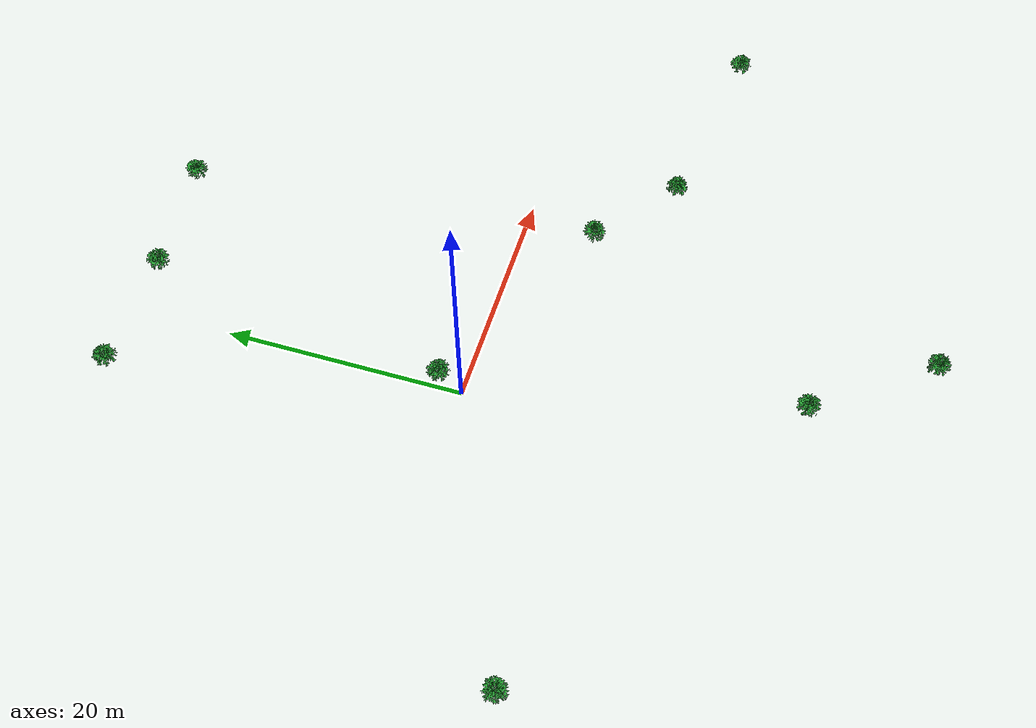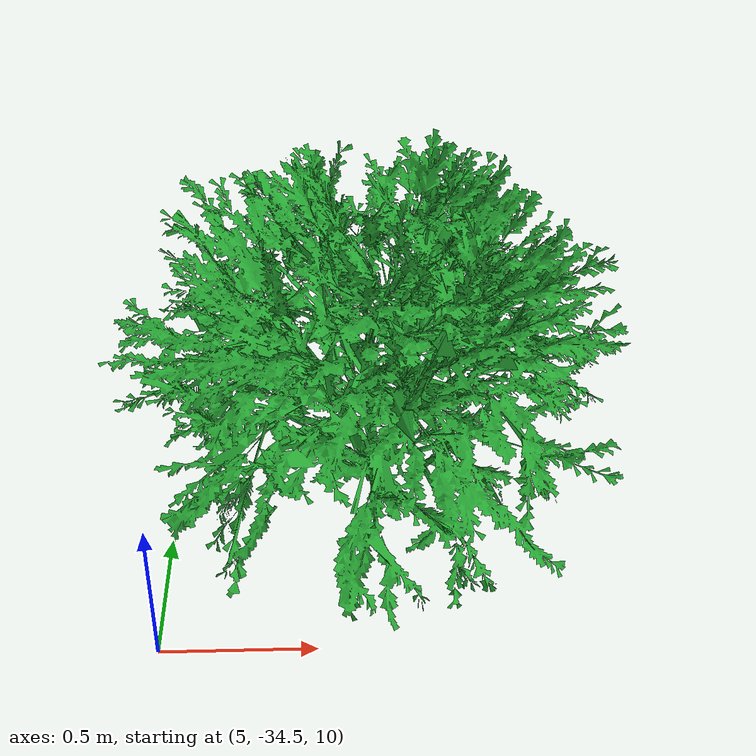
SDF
<sdf version="1.6">
 <world name="kin">
  <include><uri>model://sun</uri><pose>0 0 100 0 0 0</pose></include>
  <include>
   <uri>model://tree1</uri>
   <name>tree1_0</name>
   <pose>-1.54947463662 22.9281659238 10 0 0 4.27120201325</pose>
  </include>
  <include>
   <uri>model://tree1</uri>
   <name>tree1_1</name>
   <pose>10.4908049736 -7.53207471609 10 0 0 0.774660105044</pose>
  </include>
  <include>
   <uri>model://tree1</uri>
   <name>tree1_2</name>
   <pose>-0.288133870841 -25.6376380745 10 0 0 3.33748398993</pose>
  </include>
  <include>
   <uri>model://tree1</uri>
   <name>tree1_3</name>
   <pose>31.7101761373 -14.6777765838 10 0 0 4.30312884022</pose>
  </include>
  <include>
   <uri>model://tree1</uri>
   <name>tree1_4</name>
   <pose>7.54133145624 24.1107064554 10 0 0 2.10261427572</pose>
  </include>
  <include>
   <uri>model://tree1</uri>
   <name>tree1_5</name>
   <pose>16.7150792807 -12.5760301581 10 0 0 2.56474647022</pose>
  </include>
  <include>
   <uri>model://tree1</uri>
   <name>tree1_6</name>
   <pose>5.69644328331 -33.8543156691 10 0 0 5.23163773391</pose>
  </include>
  <include>
   <uri>model://tree1</uri>
   <name>tree1_7</name>
   <pose>-4.91037616847 -0.316355991446 10 0 0 4.4640348111</pose>
  </include>
  <include>
   <uri>model://tree1</uri>
   <name>tree1_8</name>
   <pose>-10.5571252468 22.6731629624 10 0 0 2.39426569163</pose>
  </include>
  <include>
   <uri>model://tree1</uri>
   <name>tree1_9</name>
   <pose>-25.5079989475 -10.9374816162 10 0 0 1.28696215041</pose>
  </include>
  <scene><sky><clouds><speed>1</speed></clouds></sky><grid>0</grid></scene>
  <gravity>0 0 0</gravity>
  <physics name="default_physics" default="0" type="ode">
   <max_step_size>0.01</max_step_size>
   <real_time_factor>1</real_time_factor>
   <real_time_update_rate>100</real_time_update_rate>
  </physics>
 </world>
</sdf>

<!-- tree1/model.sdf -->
<sdf version="1.5">

    <model name="tree1">
      <static>true</static>
      <link name="tree">
	<visual name="body_visual">
	    <pose>0 0 0 0 0 0</pose>
	    <geometry>
	      <mesh>
		<scale>0.2 0.2 0.2</scale>
		<uri>model://tree1/meshes/tree01.stl</uri>
	      </mesh>
	    </geometry>
	    <material>
	      <script>
		<name>Gazebo/Green</name>
		<uri>file://media/materials/scripts/gazebo.material</uri>
	      </script>
	    </material>
	  </visual>
      </link>
    </model>

</sdf>
